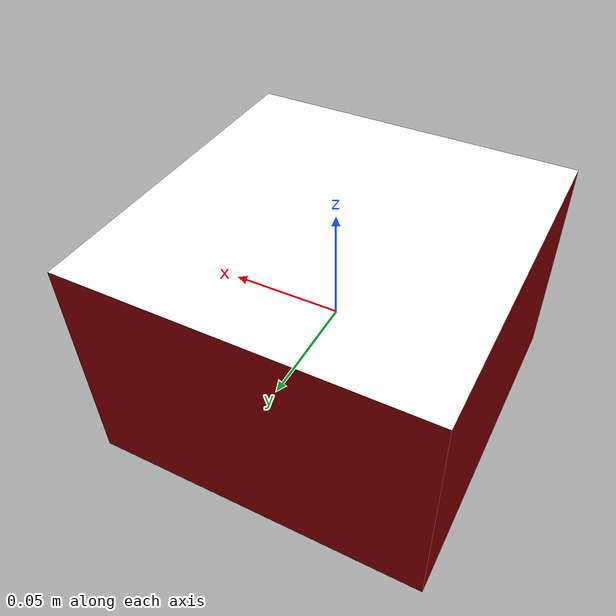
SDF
<?xml version="1.0" ?>
<sdf version="1.6">

  <model name="markerbox1">
    <link name="box1">
      <pose>0 0 0 0 0 0</pose>
      <inertial>
        <inertia>
          <ixx>1</ixx>
          <ixy>0</ixy>
          <ixz>0</ixz>
          <iyy>1</iyy>
          <iyz>0</iyz>
          <izz>1</izz>
        </inertia>
        <mass>1.0</mass>
      </inertial>
      <collision name="box1_collision">
        <geometry>
          <box>
            <size>0.15 0.15 0.1</size>
          </box>
        </geometry>
      </collision>
      <visual name="box1_visual">
        <geometry>
          <box>
            <size>0.15 0.15 0.1</size>
          </box>
        </geometry>
        <material>
          <ambient>0.1 0.0 0.0 1</ambient>
          <diffuse>0.6 0.0 0.0 1</diffuse>
          <specular>0.8 0.6 0.6 1</specular>
        </material>

      </visual>
    </link>

    <joint name="joint_plane1" type="fixed">
      <parent>box1</parent>
      <child>plane1</child>
    </joint>

    <link name="plane1">
      <pose>0 0 0.05 0 0 0</pose>
      <visual name="plane1_visual">
        <geometry>
          <plane>
            <normal>0 0 1</normal>
            <size>0.15 0.15</size>
          </plane>
        </geometry>
        <material>
          <ambient>1.0 1.0 1.0 1</ambient>
          <diffuse>1.0 1.0 1.0 1</diffuse>
          <specular>1.0 1.0 1.0 1</specular>
        </material>
      </visual>
    </link>

    <joint name="joint_markerbox1" type="fixed">
      <parent>plane1</parent>
      <child>marker1</child>
    </joint>

    <link name="marker1">
      <pose>0 0 0.05 0 0 0</pose>
      <visual name="marker1_visual">
        <geometry>
          <box>
            <size>0.115 0.115 0.0001</size>
          </box>
        </geometry>
        <material>
          <ambient>1.0 1.0 1.0 1</ambient>
          <diffuse>1.0 1.0 1.0 1</diffuse>
          <specular>0.0 0.0 0.0 1</specular>
          <pbr>
            <metal>
              <albedo_map>textures/4x4_1000-1_115.png</albedo_map>
              <roughness>1.0</roughness>
              <metalness>0.0</metalness>
            </metal>
          </pbr>
        </material>

      </visual>

      <collision name="collision1">
        <geometry>
          <box>
            <size>0.115 0.115 0.0001</size>
          </box>
        </geometry>
      </collision>
    </link>
  </model>

</sdf>
